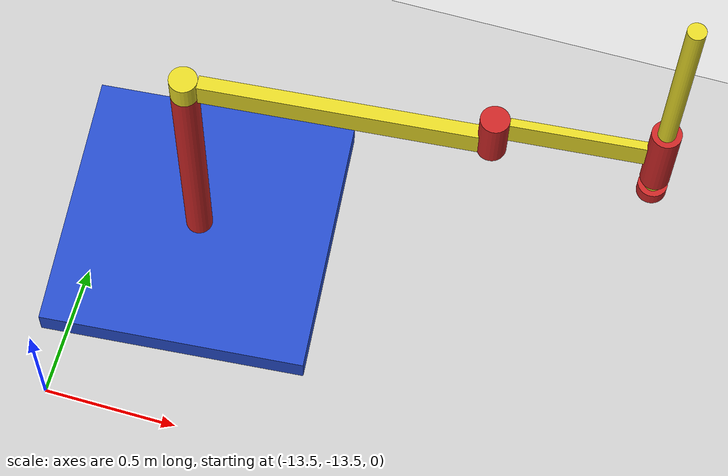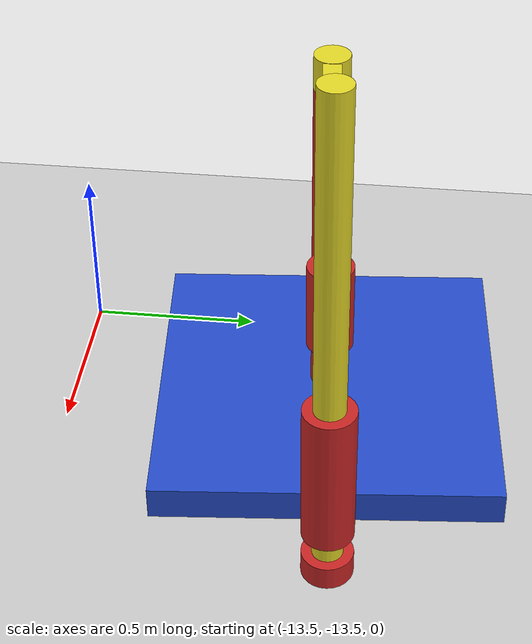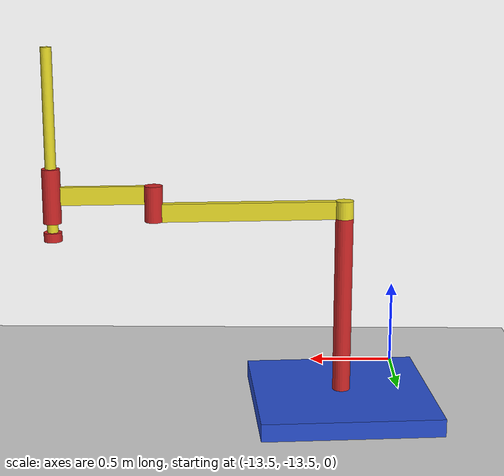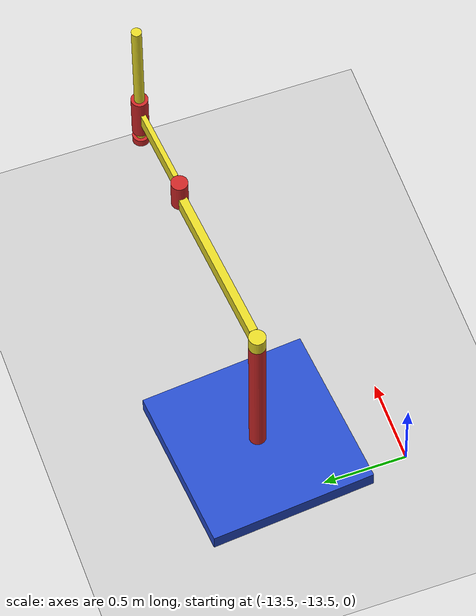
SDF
<sdf version="1.7">
 <world name="default">
  <model name="ground_plane">
   <static>1</static>
   <link name="link">
    <collision name="collision">
     <geometry><plane><normal>0 0 1</normal><size>25 25</size></plane></geometry>
     <surface><friction><ode><mu>100</mu><mu2>50</mu2></ode></friction></surface>
    </collision>
    <visual name="visual">
     <cast_shadows>0</cast_shadows>
     <geometry><plane><normal>0 0 1</normal><size>25 25</size></plane></geometry>
     <material>
      <script><uri>file://media/materials/scripts/gazebo.material</uri><name>Gazebo/Grey</name></script>
     </material>
    </visual>
   </link>
  </model>
  <model name="simple_arm_clone">
   <link name="arm_base">
    <inertial>
     <pose>0 0 0.00099 0 -0 0</pose>
     <inertia><ixx>1.11</ixx><ixy>0</ixy><ixz>0</ixz><iyy>100.11</iyy><iyz>0</iyz><izz>1.01</izz></inertia>
     <mass>101</mass>
    </inertial>
    <collision name="arm_base_geom">
     <pose>0 0 0.05 0 -0 0</pose>
     <geometry><box><size>1 1 0.1</size></box></geometry>
    </collision>
    <visual name="arm_base_geom_visual">
     <pose>0 0 0.05 0 -0 0</pose>
     <geometry><box><size>1 1 0.1</size></box></geometry>
     <material>
      <script><uri>file://media/materials/scripts/gazebo.material</uri><name>Gazebo/Blue</name></script>
     </material>
    </visual>
    <collision name="arm_base_geom_arm_trunk">
     <pose>0 0 0.6 0 -0 0</pose>
     <geometry><cylinder><radius>0.05</radius><length>1</length></cylinder></geometry>
    </collision>
    <visual name="arm_base_geom_arm_trunk_visual">
     <pose>0 0 0.6 0 -0 0</pose>
     <geometry><cylinder><radius>0.05</radius><length>1</length></cylinder></geometry>
     <material>
      <script><uri>file://media/materials/scripts/gazebo.material</uri><name>Gazebo/Red</name></script>
     </material>
    </visual>
   </link>
   <link name="arm_shoulder_pan">
    <pose>0 0 1.1 0 -0 0</pose>
    <inertial>
     <pose>0.045455 0 0 0 -0 0</pose>
     <inertia><ixx>0.011</ixx><ixy>0</ixy><ixz>0</ixz><iyy>0.0225</iyy><iyz>0</iyz><izz>0.0135</izz></inertia>
     <mass>1.1</mass>
    </inertial>
    <collision name="arm_shoulder_pan_geom">
     <pose>0 0 0.05 0 -0 0</pose>
     <geometry><cylinder><radius>0.05</radius><length>0.1</length></cylinder></geometry>
    </collision>
    <visual name="arm_shoulder_pan_geom_visual">
     <pose>0 0 0.05 0 -0 0</pose>
     <geometry><cylinder><radius>0.05</radius><length>0.1</length></cylinder></geometry>
     <material>
      <script><uri>file://media/materials/scripts/gazebo.material</uri><name>Gazebo/Yellow</name></script>
     </material>
    </visual>
    <collision name="arm_shoulder_pan_geom_arm_shoulder">
     <pose>0.55 0 0.05 0 -0 0</pose>
     <geometry><box><size>1 0.05 0.1</size></box></geometry>
    </collision>
    <visual name="arm_shoulder_pan_geom_arm_shoulder_visual">
     <pose>0.55 0 0.05 0 -0 0</pose>
     <geometry><box><size>1 0.05 0.1</size></box></geometry>
     <material>
      <script><uri>file://media/materials/scripts/gazebo.material</uri><name>Gazebo/Yellow</name></script>
     </material>
    </visual>
   </link>
   <link name="arm_elbow_pan">
    <pose>1.05 0 1.1 0 -0 0</pose>
    <inertial>
     <pose>0.0875 0 0.083333 0 -0 0</pose>
     <inertia>
      <ixx>0.031</ixx>
      <ixy>0</ixy>
      <ixz>0.005</ixz>
      <iyy>0.07275</iyy>
      <iyz>0</iyz>
      <izz>0.04475</izz>
     </inertia>
     <mass>1.2</mass>
    </inertial>
    <collision name="arm_elbow_pan_geom">
     <pose>0 0 0.1 0 -0 0</pose>
     <geometry><cylinder><radius>0.05</radius><length>0.2</length></cylinder></geometry>
    </collision>
    <visual name="arm_elbow_pan_geom_visual">
     <pose>0 0 0.1 0 -0 0</pose>
     <geometry><cylinder><radius>0.05</radius><length>0.2</length></cylinder></geometry>
     <material>
      <script><uri>file://media/materials/scripts/gazebo.material</uri><name>Gazebo/Red</name></script>
     </material>
    </visual>
    <collision name="arm_elbow_pan_geom_arm_elbow">
     <pose>0.3 0 0.15 0 -0 0</pose>
     <geometry><box><size>0.5 0.03 0.1</size></box></geometry>
    </collision>
    <visual name="arm_elbow_pan_geom_arm_elbow_visual">
     <pose>0.3 0 0.15 0 -0 0</pose>
     <geometry><box><size>0.5 0.03 0.1</size></box></geometry>
     <material>
      <script><uri>file://media/materials/scripts/gazebo.material</uri><name>Gazebo/Yellow</name></script>
     </material>
    </visual>
    <collision name="arm_elbow_pan_geom_arm_wrist">
     <pose>0.55 0 0.15 0 -0 0</pose>
     <geometry><cylinder><radius>0.05</radius><length>0.3</length></cylinder></geometry>
    </collision>
    <visual name="arm_elbow_pan_geom_arm_wrist_visual">
     <pose>0.55 0 0.15 0 -0 0</pose>
     <geometry><cylinder><radius>0.05</radius><length>0.3</length></cylinder></geometry>
     <material>
      <script><uri>file://media/materials/scripts/gazebo.material</uri><name>Gazebo/Red</name></script>
     </material>
    </visual>
   </link>
   <link name="arm_wrist_lift">
    <pose>1.6 0 1.05 0 -0 0</pose>
    <inertial>
     <inertia><ixx>0.01</ixx><ixy>0</ixy><ixz>0</ixz><iyy>0.01</iyy><iyz>0</iyz><izz>0.001</izz></inertia>
     <mass>0.1</mass>
    </inertial>
    <collision name="arm_wrist_lift_geom">
     <pose>0 0 0.5 0 -0 0</pose>
     <geometry><cylinder><radius>0.03</radius><length>1</length></cylinder></geometry>
    </collision>
    <visual name="arm_wrist_lift_geom_visual">
     <pose>0 0 0.5 0 -0 0</pose>
     <geometry><cylinder><radius>0.03</radius><length>1</length></cylinder></geometry>
     <material>
      <script><uri>file://media/materials/scripts/gazebo.material</uri><name>Gazebo/Yellow</name></script>
     </material>
    </visual>
   </link>
   <link name="arm_wrist_roll">
    <pose>1.6 0 1 0 -0 0</pose>
    <inertial>
     <inertia><ixx>0.01</ixx><ixy>0</ixy><ixz>0</ixz><iyy>0.01</iyy><iyz>0</iyz><izz>0.001</izz></inertia>
     <mass>0.1</mass>
    </inertial>
    <collision name="arm_wrist_roll_geom">
     <pose>0 0 0.025 0 -0 0</pose>
     <geometry><cylinder><radius>0.05</radius><length>0.05</length></cylinder></geometry>
    </collision>
    <visual name="arm_wrist_roll_geom_visual">
     <pose>0 0 0.025 0 -0 0</pose>
     <geometry><cylinder><radius>0.05</radius><length>0.05</length></cylinder></geometry>
     <material>
      <script><uri>file://media/materials/scripts/gazebo.material</uri><name>Gazebo/Red</name></script>
     </material>
    </visual>
   </link>
   <joint name="arm_shoulder_pan_joint" type="revolute">
    <parent>arm_base</parent>
    <child>arm_shoulder_pan</child>
    <axis>
     <dynamics>
      <damping>1</damping>
      <friction>0</friction>
      <spring_reference>0</spring_reference>
      <spring_stiffness>0</spring_stiffness>
     </dynamics>
     <xyz expressed_in="__model__">0 0 1</xyz>
     <limit><lower>-1e+16</lower><upper>1e+16</upper></limit>
    </axis>
   </joint>
   <joint name="arm_elbow_pan_joint" type="revolute">
    <parent>arm_shoulder_pan</parent>
    <child>arm_elbow_pan</child>
    <axis>
     <dynamics>
      <damping>1</damping>
      <friction>0</friction>
      <spring_reference>0</spring_reference>
      <spring_stiffness>0</spring_stiffness>
     </dynamics>
     <xyz expressed_in="__model__">0 0 1</xyz>
     <limit><lower>-1e+16</lower><upper>1e+16</upper></limit>
    </axis>
   </joint>
   <joint name="arm_wrist_lift_joint" type="prismatic">
    <parent>arm_elbow_pan</parent>
    <child>arm_wrist_lift</child>
    <axis>
     <dynamics>
      <damping>1</damping>
      <friction>0</friction>
      <spring_reference>0</spring_reference>
      <spring_stiffness>0</spring_stiffness>
     </dynamics>
     <limit><lower>-0.8</lower><upper>0.1</upper></limit>
     <xyz expressed_in="__model__">0 0 1</xyz>
    </axis>
   </joint>
   <joint name="arm_wrist_roll_joint" type="revolute">
    <parent>arm_wrist_lift</parent>
    <child>arm_wrist_roll</child>
    <axis>
     <dynamics>
      <damping>1</damping>
      <friction>0</friction>
      <spring_reference>0</spring_reference>
      <spring_stiffness>0</spring_stiffness>
     </dynamics>
     <limit><lower>-2.99999</lower><upper>2.99999</upper></limit>
     <xyz expressed_in="__model__">0 0 1</xyz>
    </axis>
   </joint>
   <pose>-13.1429 -12.7247 -5.5e-05 0.000113 2e-06 0.084277</pose>
  </model>
 </world>
</sdf>
